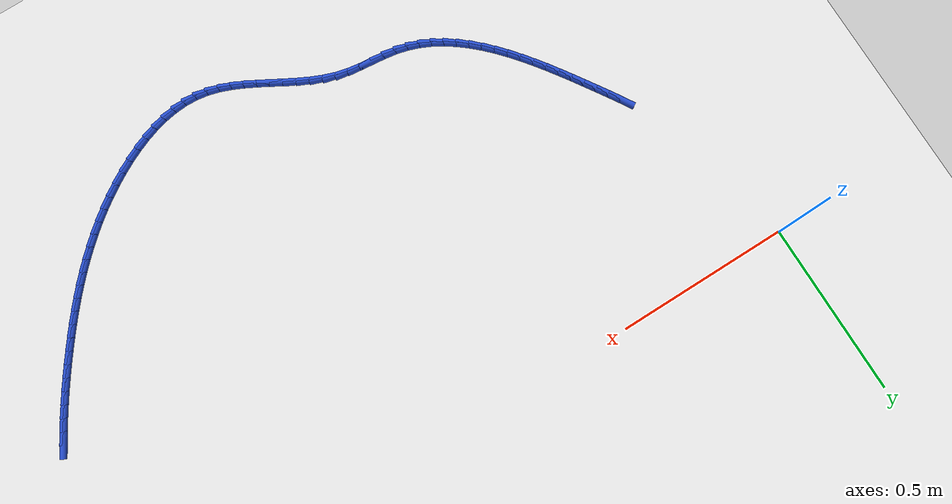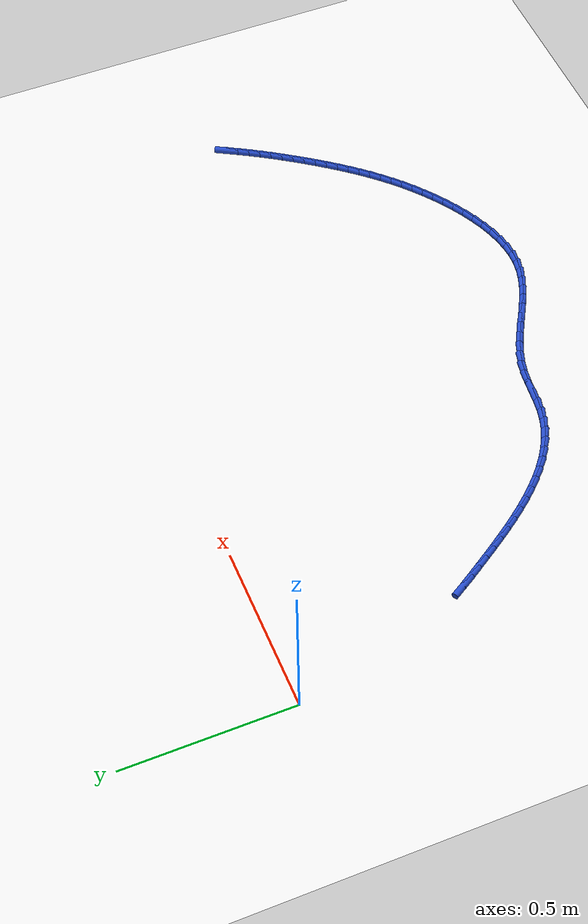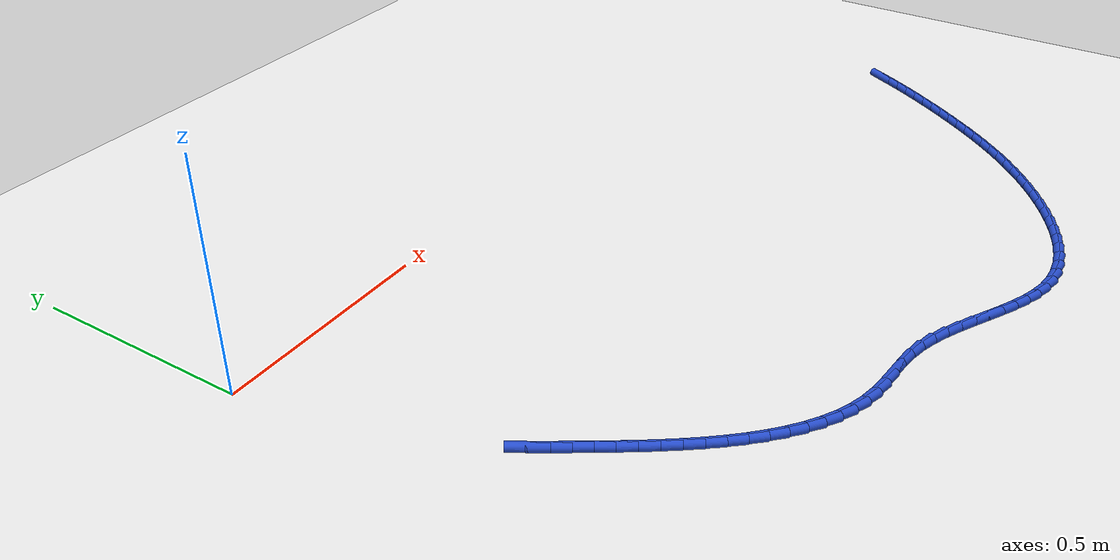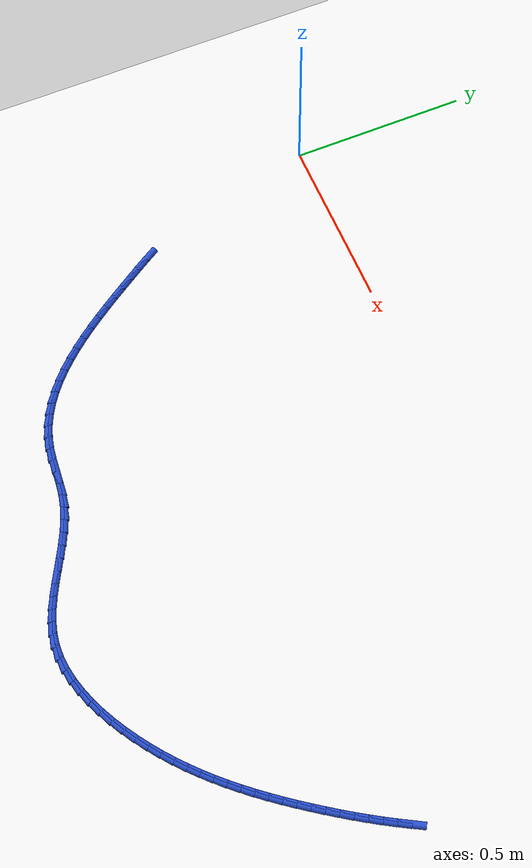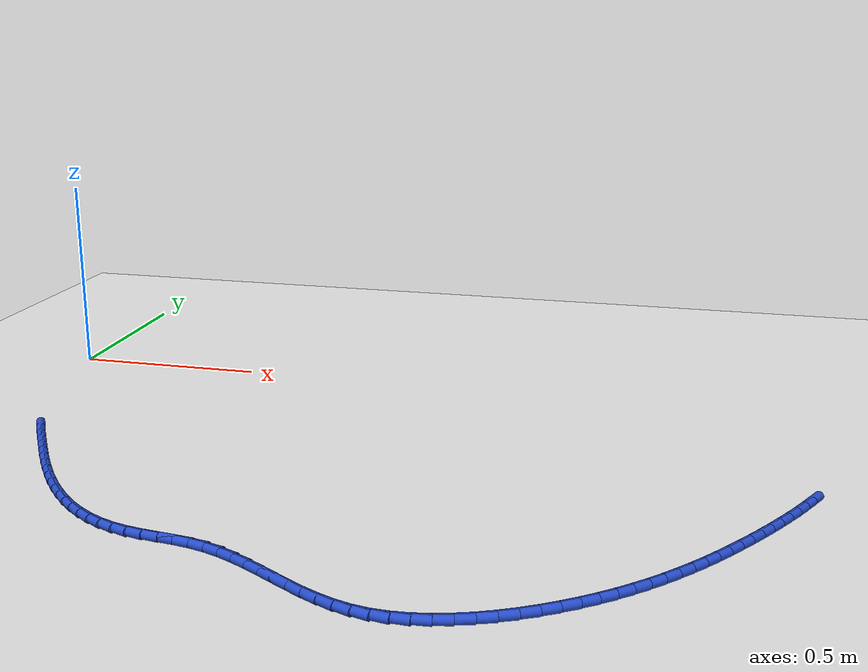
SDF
<sdf version="1.6">
 <world name="default">
  <model name="ground_plane">
   <static>1</static>
   <link name="link">
    <collision name="collision">
     <geometry><plane><normal>0 0 1</normal><size>100 100</size></plane></geometry>
     <surface><friction><ode><mu>100</mu><mu2>50</mu2></ode></friction></surface>
    </collision>
    <visual name="visual">
     <cast_shadows>0</cast_shadows>
     <geometry><plane><normal>0 0 1</normal><size>100 100</size></plane></geometry>
     <material>
      <script><uri>file://media/materials/scripts/gazebo.material</uri><name>Gazebo/WhiteGlow</name></script>
     </material>
    </visual>
   </link>
  </model>
  <model name="line">
   <link name="link_111">
    <pose>1.9296754688427173 -0.5385220783740796 0.01 0 1.57 1.0519265025206743</pose>
    <collision name="collision">
     <geometry><cylinder><radius>0.01</radius><length>0.08</length></cylinder></geometry>
    </collision>
    <visual name="visual">
     <material>
      <script><name>Gazebo/Blue</name><uri>file://media/materials/scripts/gazebo.material</uri></script>
     </material>
     <geometry><cylinder><radius>0.01</radius><length>0.08</length></cylinder></geometry>
    </visual>
   </link>
   <link name="link_112">
    <pose>1.9123089552649983 -0.5689329792263091 0.01 0 1.57 1.0329269362939872</pose>
    <collision name="collision">
     <geometry><cylinder><radius>0.01</radius><length>0.08</length></cylinder></geometry>
    </collision>
    <visual name="visual">
     <material>
      <script><name>Gazebo/Blue</name><uri>file://media/materials/scripts/gazebo.material</uri></script>
     </material>
     <geometry><cylinder><radius>0.01</radius><length>0.08</length></cylinder></geometry>
    </visual>
   </link>
   <link name="link_113">
    <pose>1.8942800849756538 -0.5991555236947708 0.01 0 1.57 1.013427966920176</pose>
    <collision name="collision">
     <geometry><cylinder><radius>0.01</radius><length>0.08</length></cylinder></geometry>
    </collision>
    <visual name="visual">
     <material>
      <script><name>Gazebo/Blue</name><uri>file://media/materials/scripts/gazebo.material</uri></script>
     </material>
     <geometry><cylinder><radius>0.01</radius><length>0.08</length></cylinder></geometry>
    </visual>
   </link>
   <link name="link_114">
    <pose>1.8755271614548825 -0.6292425426321622 0.01 0 1.57 0.9948568612468318</pose>
    <collision name="collision">
     <geometry><cylinder><radius>0.01</radius><length>0.08</length></cylinder></geometry>
    </collision>
    <visual name="visual">
     <material>
      <script><name>Gazebo/Blue</name><uri>file://media/materials/scripts/gazebo.material</uri></script>
     </material>
     <geometry><cylinder><radius>0.01</radius><length>0.08</length></cylinder></geometry>
    </visual>
   </link>
   <link name="link_115">
    <pose>1.856088612708388 -0.6591765402133098 0.01 0 1.57 0.97782227431075</pose>
    <collision name="collision">
     <geometry><cylinder><radius>0.01</radius><length>0.08</length></cylinder></geometry>
    </collision>
    <visual name="visual">
     <material>
      <script><name>Gazebo/Blue</name><uri>file://media/materials/scripts/gazebo.material</uri></script>
     </material>
     <geometry><cylinder><radius>0.01</radius><length>0.08</length></cylinder></geometry>
    </visual>
   </link>
   <link name="link_116">
    <pose>1.8360578950467512 -0.6889013691652413 0.01 0 1.57 0.9621812364572336</pose>
    <collision name="collision">
     <geometry><cylinder><radius>0.01</radius><length>0.08</length></cylinder></geometry>
    </collision>
    <visual name="visual">
     <material>
      <script><name>Gazebo/Blue</name><uri>file://media/materials/scripts/gazebo.material</uri></script>
     </material>
     <geometry><cylinder><radius>0.01</radius><length>0.08</length></cylinder></geometry>
    </visual>
   </link>
   <link name="link_117">
    <pose>1.8155290341678059 -0.7183604822818624 0.01 0 1.57 0.947796597082553</pose>
    <collision name="collision">
     <geometry><cylinder><radius>0.01</radius><length>0.08</length></cylinder></geometry>
    </collision>
    <visual name="visual">
     <material>
      <script><name>Gazebo/Blue</name><uri>file://media/materials/scripts/gazebo.material</uri></script>
     </material>
     <geometry><cylinder><radius>0.01</radius><length>0.08</length></cylinder></geometry>
    </visual>
   </link>
   <link name="link_118">
    <pose>1.7945957257088299 -0.7474973550936432 0.01 0 1.57 0.9334956920907039</pose>
    <collision name="collision">
     <geometry><cylinder><radius>0.01</radius><length>0.08</length></cylinder></geometry>
    </collision>
    <visual name="visual">
     <material>
      <script><name>Gazebo/Blue</name><uri>file://media/materials/scripts/gazebo.material</uri></script>
     </material>
     <geometry><cylinder><radius>0.01</radius><length>0.08</length></cylinder></geometry>
    </visual>
   </link>
   <link name="link_119">
    <pose>1.7733019379216015 -0.7762588886535007 0.01 0 1.57 0.9170424932039646</pose>
    <collision name="collision">
     <geometry><cylinder><radius>0.01</radius><length>0.08</length></cylinder></geometry>
    </collision>
    <visual name="visual">
     <material>
      <script><name>Gazebo/Blue</name><uri>file://media/materials/scripts/gazebo.material</uri></script>
     </material>
     <geometry><cylinder><radius>0.01</radius><length>0.08</length></cylinder></geometry>
    </visual>
   </link>
   <link name="link_120">
    <pose>1.7515892883882076 -0.804599034546223 0.01 0 1.57 0.8981669279160287</pose>
    <collision name="collision">
     <geometry><cylinder><radius>0.01</radius><length>0.08</length></cylinder></geometry>
    </collision>
    <visual name="visual">
     <material>
      <script><name>Gazebo/Blue</name><uri>file://media/materials/scripts/gazebo.material</uri></script>
     </material>
     <geometry><cylinder><radius>0.01</radius><length>0.08</length></cylinder></geometry>
    </visual>
   </link>
   <link name="link_121">
    <pose>1.7293867874141093 -0.8324726128219052 0.01 0 1.57 0.8768821908031729</pose>
    <collision name="collision">
     <geometry><cylinder><radius>0.01</radius><length>0.08</length></cylinder></geometry>
    </collision>
    <visual name="visual">
     <material>
      <script><name>Gazebo/Blue</name><uri>file://media/materials/scripts/gazebo.material</uri></script>
     </material>
     <geometry><cylinder><radius>0.01</radius><length>0.08</length></cylinder></geometry>
    </visual>
   </link>
   <link name="link_122">
    <pose>1.7066234453047688 -0.8598344435306423 0.01 0 1.57 0.8532168078342263</pose>
    <collision name="collision">
     <geometry><cylinder><radius>0.01</radius><length>0.08</length></cylinder></geometry>
    </collision>
    <visual name="visual">
     <material>
      <script><name>Gazebo/Blue</name><uri>file://media/materials/scripts/gazebo.material</uri></script>
     </material>
     <geometry><cylinder><radius>0.01</radius><length>0.08</length></cylinder></geometry>
    </visual>
   </link>
   <link name="link_123">
    <pose>1.6832282723656466 -0.8866393467225296 0.01 0 1.57 0.8272180854871407</pose>
    <collision name="collision">
     <geometry><cylinder><radius>0.01</radius><length>0.08</length></cylinder></geometry>
    </collision>
    <visual name="visual">
     <material>
      <script><name>Gazebo/Blue</name><uri>file://media/materials/scripts/gazebo.material</uri></script>
     </material>
     <geometry><cylinder><radius>0.01</radius><length>0.08</length></cylinder></geometry>
    </visual>
   </link>
   <link name="link_124">
    <pose>1.6591302789022055 -0.9128421424476616 0.01 0 1.57 0.7989555534252532</pose>
    <collision name="collision">
     <geometry><cylinder><radius>0.01</radius><length>0.08</length></cylinder></geometry>
    </collision>
    <visual name="visual">
     <material>
      <script><name>Gazebo/Blue</name><uri>file://media/materials/scripts/gazebo.material</uri></script>
     </material>
     <geometry><cylinder><radius>0.01</radius><length>0.08</length></cylinder></geometry>
    </visual>
   </link>
   <link name="link_125">
    <pose>1.6342584752199072 -0.938397650756133 0.01 0 1.57 0.7685241492015924</pose>
    <collision name="collision">
     <geometry><cylinder><radius>0.01</radius><length>0.08</length></cylinder></geometry>
    </collision>
    <visual name="visual">
     <material>
      <script><name>Gazebo/Blue</name><uri>file://media/materials/scripts/gazebo.material</uri></script>
     </material>
     <geometry><cylinder><radius>0.01</radius><length>0.08</length></cylinder></geometry>
    </visual>
   </link>
   <link name="link_126">
    <pose>1.608541871624212 -0.9632606916980401 0.01 0 1.57 0.7360468403011926</pose>
    <collision name="collision">
     <geometry><cylinder><radius>0.01</radius><length>0.08</length></cylinder></geometry>
    </collision>
    <visual name="visual">
     <material>
      <script><name>Gazebo/Blue</name><uri>file://media/materials/scripts/gazebo.material</uri></script>
     </material>
     <geometry><cylinder><radius>0.01</radius><length>0.08</length></cylinder></geometry>
    </visual>
   </link>
   <link name="link_127">
    <pose>1.5819094784205818 -0.9873860853234767 0.01 0 1.57 0.7016763457427663</pose>
    <collision name="collision">
     <geometry><cylinder><radius>0.01</radius><length>0.08</length></cylinder></geometry>
    </collision>
    <visual name="visual">
     <material>
      <script><name>Gazebo/Blue</name><uri>file://media/materials/scripts/gazebo.material</uri></script>
     </material>
     <geometry><cylinder><radius>0.01</radius><length>0.08</length></cylinder></geometry>
    </visual>
   </link>
   <link name="link_128">
    <pose>1.554290305914479 -1.0107286516825387 0.01 0 1.57 0.6655956207155242</pose>
    <collision name="collision">
     <geometry><cylinder><radius>0.01</radius><length>0.08</length></cylinder></geometry>
    </collision>
    <visual name="visual">
     <material>
      <script><name>Gazebo/Blue</name><uri>file://media/materials/scripts/gazebo.material</uri></script>
     </material>
     <geometry><cylinder><radius>0.01</radius><length>0.08</length></cylinder></geometry>
    </visual>
   </link>
   <link name="link_129">
    <pose>1.5256133644113639 -1.0332432108253198 0.01 0 1.57 0.6280168160291761</pose>
    <collision name="collision">
     <geometry><cylinder><radius>0.01</radius><length>0.08</length></cylinder></geometry>
    </collision>
    <visual name="visual">
     <material>
      <script><name>Gazebo/Blue</name><uri>file://media/materials/scripts/gazebo.material</uri></script>
     </material>
     <geometry><cylinder><radius>0.01</radius><length>0.08</length></cylinder></geometry>
    </visual>
   </link>
   <link name="link_130">
    <pose>1.495807664216699 -1.0548845828019164 0.01 0 1.57 0.5891760330415555</pose>
    <collision name="collision">
     <geometry><cylinder><radius>0.01</radius><length>0.08</length></cylinder></geometry>
    </collision>
    <visual name="visual">
     <material>
      <script><name>Gazebo/Blue</name><uri>file://media/materials/scripts/gazebo.material</uri></script>
     </material>
     <geometry><cylinder><radius>0.01</radius><length>0.08</length></cylinder></geometry>
    </visual>
   </link>
   <link name="link_131">
    <pose>1.4648024766352588 -1.0756073013813752 0.01 0 1.57 0.5485099109714411</pose>
    <collision name="collision">
     <geometry><cylinder><radius>0.01</radius><length>0.08</length></cylinder></geometry>
    </collision>
    <visual name="visual">
     <material>
      <script><name>Gazebo/Blue</name><uri>file://media/materials/scripts/gazebo.material</uri></script>
     </material>
     <geometry><cylinder><radius>0.01</radius><length>0.08</length></cylinder></geometry>
    </visual>
   </link>
   <link name="link_132">
    <pose>1.4326021884649134 -1.0952835087669197 0.01 0 1.57 0.5037477425800794</pose>
    <collision name="collision">
     <geometry><cylinder><radius>0.01</radius><length>0.08</length></cylinder></geometry>
    </collision>
    <visual name="visual">
     <material>
      <script><name>Gazebo/Blue</name><uri>file://media/materials/scripts/gazebo.material</uri></script>
     </material>
     <geometry><cylinder><radius>0.01</radius><length>0.08</length></cylinder></geometry>
    </visual>
   </link>
   <link name="link_133">
    <pose>1.3993897286711032 -1.113589510482211 0.01 0 1.57 0.45362044474532326</pose>
    <collision name="collision">
     <geometry><cylinder><radius>0.01</radius><length>0.08</length></cylinder></geometry>
    </collision>
    <visual name="visual">
     <material>
      <script><name>Gazebo/Blue</name><uri>file://media/materials/scripts/gazebo.material</uri></script>
     </material>
     <geometry><cylinder><radius>0.01</radius><length>0.08</length></cylinder></geometry>
    </visual>
   </link>
   <link name="link_134">
    <pose>1.3653739776538583 -1.1301731468269862 0.01 0 1.57 0.39696081624036833</pose>
    <collision name="collision">
     <geometry><cylinder><radius>0.01</radius><length>0.08</length></cylinder></geometry>
    </collision>
    <visual name="visual">
     <material>
      <script><name>Gazebo/Blue</name><uri>file://media/materials/scripts/gazebo.material</uri></script>
     </material>
     <geometry><cylinder><radius>0.01</radius><length>0.08</length></cylinder></geometry>
    </visual>
   </link>
   <link name="link_135">
    <pose>1.330763815813209 -1.1446822581009828 0.01 0 1.57 0.33244112306460327</pose>
    <collision name="collision">
     <geometry><cylinder><radius>0.01</radius><length>0.08</length></cylinder></geometry>
    </collision>
    <visual name="visual">
     <material>
      <script><name>Gazebo/Blue</name><uri>file://media/materials/scripts/gazebo.material</uri></script>
     </material>
     <geometry><cylinder><radius>0.01</radius><length>0.08</length></cylinder></geometry>
    </visual>
   </link>
   <link name="link_136">
    <pose>1.2957681235491834 -1.1567646846039374 0.01 0 1.57 0.2585917008387142</pose>
    <collision name="collision">
     <geometry><cylinder><radius>0.01</radius><length>0.08</length></cylinder></geometry>
    </collision>
    <visual name="visual">
     <material>
      <script><name>Gazebo/Blue</name><uri>file://media/materials/scripts/gazebo.material</uri></script>
     </material>
     <geometry><cylinder><radius>0.01</radius><length>0.08</length></cylinder></geometry>
    </visual>
   </link>
   <link name="link_137">
    <pose>1.2605957812618116 -1.1660682666355875 0.01 0 1.57 0.1738822780844759</pose>
    <collision name="collision">
     <geometry><cylinder><radius>0.01</radius><length>0.08</length></cylinder></geometry>
    </collision>
    <visual name="visual">
     <material>
      <script><name>Gazebo/Blue</name><uri>file://media/materials/scripts/gazebo.material</uri></script>
     </material>
     <geometry><cylinder><radius>0.01</radius><length>0.08</length></cylinder></geometry>
    </visual>
   </link>
   <link name="link_138">
    <pose>1.2254556693511234 -1.1722408444956705 0.01 0 1.57 0.07691076941709296</pose>
    <collision name="collision">
     <geometry><cylinder><radius>0.01</radius><length>0.08</length></cylinder></geometry>
    </collision>
    <visual name="visual">
     <material>
      <script><name>Gazebo/Blue</name><uri>file://media/materials/scripts/gazebo.material</uri></script>
     </material>
     <geometry><cylinder><radius>0.01</radius><length>0.08</length></cylinder></geometry>
    </visual>
   </link>
   <link name="link_139">
    <pose>1.1905566682171485 -1.174930258483923 0.01 0 1.57 -0.03325167312712115</pose>
    <collision name="collision">
     <geometry><cylinder><radius>0.01</radius><length>0.08</length></cylinder></geometry>
    </collision>
    <visual name="visual">
     <material>
      <script><name>Gazebo/Blue</name><uri>file://media/materials/scripts/gazebo.material</uri></script>
     </material>
     <geometry><cylinder><radius>0.01</radius><length>0.08</length></cylinder></geometry>
    </visual>
   </link>
   <link name="link_140">
    <pose>1.1561076582599152 -1.173784348900083 0.01 0 1.57 -0.15569226850982248</pose>
    <collision name="collision">
     <geometry><cylinder><radius>0.01</radius><length>0.08</length></cylinder></geometry>
    </collision>
    <visual name="visual">
     <material>
      <script><name>Gazebo/Blue</name><uri>file://media/materials/scripts/gazebo.material</uri></script>
     </material>
     <geometry><cylinder><radius>0.01</radius><length>0.08</length></cylinder></geometry>
    </visual>
   </link>
   <link name="link_141">
    <pose>1.1223081015865621 -1.1684790831205125 0.01 0 1.57 -0.27208022016929284</pose>
    <collision name="collision">
     <geometry><cylinder><radius>0.01</radius><length>0.08</length></cylinder></geometry>
    </collision>
    <visual name="visual">
     <material>
      <script><name>Gazebo/Blue</name><uri>file://media/materials/scripts/gazebo.material</uri></script>
     </material>
     <geometry><cylinder><radius>0.01</radius><length>0.08</length></cylinder></geometry>
    </visual>
   </link>
   <link name="link_142">
    <pose>1.0891751078225933 -1.1592350115243628 0.01 0 1.57 -0.36517323914411226</pose>
    <collision name="collision">
     <geometry><cylinder><radius>0.01</radius><length>0.08</length></cylinder></geometry>
    </collision>
    <visual name="visual">
     <material>
      <script><name>Gazebo/Blue</name><uri>file://media/materials/scripts/gazebo.material</uri></script>
     </material>
     <geometry><cylinder><radius>0.01</radius><length>0.08</length></cylinder></geometry>
    </visual>
   </link>
   <link name="link_143">
    <pose>1.056560656298309 -1.1467658346316918 0.01 0 1.57 -0.4344050977661946</pose>
    <collision name="collision">
     <geometry><cylinder><radius>0.01</radius><length>0.08</length></cylinder></geometry>
    </collision>
    <visual name="visual">
     <material>
      <script><name>Gazebo/Blue</name><uri>file://media/materials/scripts/gazebo.material</uri></script>
     </material>
     <geometry><cylinder><radius>0.01</radius><length>0.08</length></cylinder></geometry>
    </visual>
   </link>
   <link name="link_144">
    <pose>1.024310763118865 -1.1318030617196757 0.01 0 1.57 -0.48110053395544616</pose>
    <collision name="collision">
     <geometry><cylinder><radius>0.01</radius><length>0.08</length></cylinder></geometry>
    </collision>
    <visual name="visual">
     <material>
      <script><name>Gazebo/Blue</name><uri>file://media/materials/scripts/gazebo.material</uri></script>
     </material>
     <geometry><cylinder><radius>0.01</radius><length>0.08</length></cylinder></geometry>
    </visual>
   </link>
   <link name="link_145">
    <pose>0.9922714443894188 -1.1150782020654901 0.01 0 1.57 -0.5067939367495693</pose>
    <collision name="collision">
     <geometry><cylinder><radius>0.01</radius><length>0.08</length></cylinder></geometry>
    </collision>
    <visual name="visual">
     <material>
      <script><name>Gazebo/Blue</name><uri>file://media/materials/scripts/gazebo.material</uri></script>
     </material>
     <geometry><cylinder><radius>0.01</radius><length>0.08</length></cylinder></geometry>
    </visual>
   </link>
   <link name="link_146">
    <pose>0.9602887162151251 -1.0973227649463113 0.01 0 1.57 -0.5126128953948126</pose>
    <collision name="collision">
     <geometry><cylinder><radius>0.01</radius><length>0.08</length></cylinder></geometry>
    </collision>
    <visual name="visual">
     <material>
      <script><name>Gazebo/Blue</name><uri>file://media/materials/scripts/gazebo.material</uri></script>
     </material>
     <geometry><cylinder><radius>0.01</radius><length>0.08</length></cylinder></geometry>
    </visual>
   </link>
   <link name="link_147">
    <pose>0.9282085947011409 -1.0792682596393155 0.01 0 1.57 -0.4990296588469301</pose>
    <collision name="collision">
     <geometry><cylinder><radius>0.01</radius><length>0.08</length></cylinder></geometry>
    </collision>
    <visual name="visual">
     <material>
      <script><name>Gazebo/Blue</name><uri>file://media/materials/scripts/gazebo.material</uri></script>
     </material>
     <geometry><cylinder><radius>0.01</radius><length>0.08</length></cylinder></geometry>
    </visual>
   </link>
   <link name="link_148">
    <pose>0.8958770959526225 -1.0616461954216774 0.01 0 1.57 -0.4658368378983186</pose>
    <collision name="collision">
     <geometry><cylinder><radius>0.01</radius><length>0.08</length></cylinder></geometry>
    </collision>
    <visual name="visual">
     <material>
      <script><name>Gazebo/Blue</name><uri>file://media/materials/scripts/gazebo.material</uri></script>
     </material>
     <geometry><cylinder><radius>0.01</radius><length>0.08</length></cylinder></geometry>
    </visual>
   </link>
   <link name="link_149">
    <pose>0.8631402360747261 -1.0451880815705732 0.01 0 1.57 -0.41229862582289895</pose>
    <collision name="collision">
     <geometry><cylinder><radius>0.01</radius><length>0.08</length></cylinder></geometry>
    </collision>
    <visual name="visual">
     <material>
      <script><name>Gazebo/Blue</name><uri>file://media/materials/scripts/gazebo.material</uri></script>
     </material>
     <geometry><cylinder><radius>0.01</radius><length>0.08</length></cylinder></geometry>
    </visual>
   </link>
   <link name="link_150">
    <pose>0.8298440311726081 -1.0306254273631794 0.01 0 1.57 -0.3375219249803566</pose>
    <collision name="collision">
     <geometry><cylinder><radius>0.01</radius><length>0.08</length></cylinder></geometry>
    </collision>
    <visual name="visual">
     <material>
      <script><name>Gazebo/Blue</name><uri>file://media/materials/scripts/gazebo.material</uri></script>
     </material>
     <geometry><cylinder><radius>0.01</radius><length>0.08</length></cylinder></geometry>
    </visual>
   </link>
   <link name="link_151">
    <pose>0.7958344973514245 -1.0186897420766714 0.01 0 1.57 -0.24170009642797935</pose>
    <collision name="collision">
     <geometry><cylinder><radius>0.01</radius><length>0.08</length></cylinder></geometry>
    </collision>
    <visual name="visual">
     <material>
      <script><name>Gazebo/Blue</name><uri>file://media/materials/scripts/gazebo.material</uri></script>
     </material>
     <geometry><cylinder><radius>0.01</radius><length>0.08</length></cylinder></geometry>
    </visual>
   </link>
   <link name="link_152">
    <pose>0.7609631189666667 -1.0100932720803484 0.01 0 1.57 -0.1519572674712842</pose>
    <collision name="collision">
     <geometry><cylinder><radius>0.01</radius><length>0.08</length></cylinder></geometry>
    </collision>
    <visual name="visual">
     <material>
      <script><name>Gazebo/Blue</name><uri>file://media/materials/scripts/gazebo.material</uri></script>
     </material>
     <geometry><cylinder><radius>0.01</radius><length>0.08</length></cylinder></geometry>
    </visual>
   </link>
   <link name="link_153">
    <pose>0.7253397830590766 -1.0046379932151008 0.01 0 1.57 -0.10538656395936323</pose>
    <collision name="collision">
     <geometry><cylinder><radius>0.01</radius><length>0.08</length></cylinder></geometry>
    </collision>
    <visual name="visual">
     <material>
      <script><name>Gazebo/Blue</name><uri>file://media/materials/scripts/gazebo.material</uri></script>
     </material>
     <geometry><cylinder><radius>0.01</radius><length>0.08</length></cylinder></geometry>
    </visual>
   </link>
   <link name="link_154">
    <pose>0.6894392660814281 -1.0008404919011376 0.01 0 1.57 -0.10390471817690056</pose>
    <collision name="collision">
     <geometry><cylinder><radius>0.01</radius><length>0.08</length></cylinder></geometry>
    </collision>
    <visual name="visual">
     <material>
      <script><name>Gazebo/Blue</name><uri>file://media/materials/scripts/gazebo.material</uri></script>
     </material>
     <geometry><cylinder><radius>0.01</radius><length>0.08</length></cylinder></geometry>
    </visual>
   </link>
   <link name="link_155">
    <pose>0.653763908264234 -0.9971202561306698 0.01 0 1.57 -0.14836669530105576</pose>
    <collision name="collision">
     <geometry><cylinder><radius>0.01</radius><length>0.08</length></cylinder></geometry>
    </collision>
    <visual name="visual">
     <material>
      <script><name>Gazebo/Blue</name><uri>file://media/materials/scripts/gazebo.material</uri></script>
     </material>
     <geometry><cylinder><radius>0.01</radius><length>0.08</length></cylinder></geometry>
    </visual>
   </link>
   <link name="link_156">
    <pose>0.6188160498380082 -0.9918967738959095 0.01 0 1.57 -0.2382863894900255</pose>
    <collision name="collision">
     <geometry><cylinder><radius>0.01</radius><length>0.08</length></cylinder></geometry>
    </collision>
    <visual name="visual">
     <material>
      <script><name>Gazebo/Blue</name><uri>file://media/materials/scripts/gazebo.material</uri></script>
     </material>
     <geometry><cylinder><radius>0.01</radius><length>0.08</length></cylinder></geometry>
    </visual>
   </link>
   <link name="link_157">
    <pose>0.5850644510095176 -0.9836984690255997 0.01 0 1.57 -0.3422931183378018</pose>
    <collision name="collision">
     <geometry><cylinder><radius>0.01</radius><length>0.08</length></cylinder></geometry>
    </collision>
    <visual name="visual">
     <material>
      <script><name>Gazebo/Blue</name><uri>file://media/materials/scripts/gazebo.material</uri></script>
     </material>
     <geometry><cylinder><radius>0.01</radius><length>0.08</length></cylinder></geometry>
    </visual>
   </link>
   <link name="link_158">
    <pose>0.5526413400233766 -0.9721454974774992 0.01 0 1.57 -0.43974362561451813</pose>
    <collision name="collision">
     <geometry><cylinder><radius>0.01</radius><length>0.08</length></cylinder></geometry>
    </collision>
    <visual name="visual">
     <material>
      <script><name>Gazebo/Blue</name><uri>file://media/materials/scripts/gazebo.material</uri></script>
     </material>
     <geometry><cylinder><radius>0.01</radius><length>0.08</length></cylinder></geometry>
    </visual>
   </link>
   <link name="link_159">
    <pose>0.5214849273065741 -0.9574874219490679 0.01 0 1.57 -0.5288949889109377</pose>
    <collision name="collision">
     <geometry><cylinder><radius>0.01</radius><length>0.08</length></cylinder></geometry>
    </collision>
    <visual name="visual">
     <material>
      <script><name>Gazebo/Blue</name><uri>file://media/materials/scripts/gazebo.material</uri></script>
     </material>
     <geometry><cylinder><radius>0.01</radius><length>0.08</length></cylinder></geometry>
    </visual>
   </link>
   <link name="link_160">
    <pose>0.4915310852636462 -0.9399813898385236 0.01 0 1.57 -0.6090017943559781</pose>
    <collision name="collision">
     <geometry><cylinder><radius>0.01</radius><length>0.08</length></cylinder></geometry>
    </collision>
    <visual name="visual">
     <material>
      <script><name>Gazebo/Blue</name><uri>file://media/materials/scripts/gazebo.material</uri></script>
     </material>
     <geometry><cylinder><radius>0.01</radius><length>0.08</length></cylinder></geometry>
    </visual>
   </link>
   <link name="link_161">
    <pose>0.46271568629913007 -0.919884548544085 0.01 0 1.57 -0.6799424662259217</pose>
    <collision name="collision">
     <geometry><cylinder><radius>0.01</radius><length>0.08</length></cylinder></geometry>
    </collision>
    <visual name="visual">
     <material>
      <script><name>Gazebo/Blue</name><uri>file://media/materials/scripts/gazebo.material</uri></script>
     </material>
     <geometry><cylinder><radius>0.01</radius><length>0.08</length></cylinder></geometry>
    </visual>
   </link>
   <link name="link_162">
    <pose>0.4349746028175628 -0.8974540454639702 0.01 0 1.57 -0.7420224068739217</pose>
    <collision name="collision">
     <geometry><cylinder><radius>0.01</radius><length>0.08</length></cylinder></geometry>
    </collision>
    <visual name="visual">
     <material>
      <script><name>Gazebo/Blue</name><uri>file://media/materials/scripts/gazebo.material</uri></script>
     </material>
     <geometry><cylinder><radius>0.01</radius><length>0.08</length></cylinder></geometry>
    </visual>
   </link>
   <link name="link_163">
    <pose>0.4082437072234813 -0.8729470279963981 0.01 0 1.57 -0.7957899689092349</pose>
    <collision name="collision">
     <geometry><cylinder><radius>0.01</radius><length>0.08</length></cylinder></geometry>
    </collision>
    <visual name="visual">
     <material>
      <script><name>Gazebo/Blue</name><uri>file://media/materials/scripts/gazebo.material</uri></script>
     </material>
     <geometry><cylinder><radius>0.01</radius><length>0.08</length></cylinder></geometry>
    </visual>
   </link>
   <link name="link_164">
    <pose>0.38245887192142247 -0.8466206435395867 0.01 0 1.57 -0.8418944511070781</pose>
    <collision name="collision">
     <geometry><cylinder><radius>0.01</radius><length>0.08</length></cylinder></geometry>
    </collision>
    <visual name="visual">
     <material>
      <script><name>Gazebo/Blue</name><uri>file://media/materials/scripts/gazebo.material</uri></script>
     </material>
     <geometry><cylinder><radius>0.01</radius><length>0.08</length></cylinder></geometry>
    </visual>
   </link>
   <link name="link_165">
    <pose>0.35755596931592326 -0.8187320394917548 0.01 0 1.57 -0.8809898698927324</pose>
    <collision name="collision">
     <geometry><cylinder><radius>0.01</radius><length>0.08</length></cylinder></geometry>
    </collision>
    <visual name="visual">
     <material>
      <script><name>Gazebo/Blue</name><uri>file://media/materials/scripts/gazebo.material</uri></script>
     </material>
     <geometry><cylinder><radius>0.01</radius><length>0.08</length></cylinder></geometry>
    </visual>
   </link>
   <link name="link_166">
    <pose>0.33347087181152096 -0.7895383632511209 0.01 0 1.57 -0.9136760986124023</pose>
    <collision name="collision">
     <geometry><cylinder><radius>0.01</radius><length>0.08</length></cylinder></geometry>
    </collision>
    <visual name="visual">
     <material>
      <script><name>Gazebo/Blue</name><uri>file://media/materials/scripts/gazebo.material</uri></script>
     </material>
     <geometry><cylinder><radius>0.01</radius><length>0.08</length></cylinder></geometry>
    </visual>
   </link>
   <link name="link_167">
    <pose>0.3101394518127517 -0.7592967622159026 0.01 0 1.57 -0.9404659609336143</pose>
    <collision name="collision">
     <geometry><cylinder><radius>0.01</radius><length>0.08</length></cylinder></geometry>
    </collision>
    <visual name="visual">
     <material>
      <script><name>Gazebo/Blue</name><uri>file://media/materials/scripts/gazebo.material</uri></script>
     </material>
     <geometry><cylinder><radius>0.01</radius><length>0.08</length></cylinder></geometry>
    </visual>
   </link>
   <link name="link_168">
    <pose>0.28749758172415285 -0.7282643837843188 0.01 0 1.57 -0.9617681541815954</pose>
    <collision name="collision">
     <geometry><cylinder><radius>0.01</radius><length>0.08</length></cylinder></geometry>
    </collision>
    <visual name="visual">
     <material>
      <script><name>Gazebo/Blue</name><uri>file://media/materials/scripts/gazebo.material</uri></script>
     </material>
     <geometry><cylinder><radius>0.01</radius><length>0.08</length></cylinder></geometry>
    </visual>
   </link>
   <link name="link_169">
    <pose>0.2654811339502613 -0.6966983753545879 0.01 0 1.57 -0.9778783625107496</pose>
    <collision name="collision">
     <geometry><cylinder><radius>0.01</radius><length>0.08</length></cylinder></geometry>
    </collision>
    <visual name="visual">
     <material>
      <script><name>Gazebo/Blue</name><uri>file://media/materials/scripts/gazebo.material</uri></script>
     </material>
     <geometry><cylinder><radius>0.01</radius><length>0.08</length></cylinder></geometry>
    </visual>
   </link>
   <link name="link_170">
    <pose>0.2440259808956139 -0.6648558843249284 0.01 0 1.57 -0.9889731770007144</pose>
    <collision name="collision">
     <geometry><cylinder><radius>0.01</radius><length>0.08</length></cylinder></geometry>
    </collision>
    <visual name="visual">
     <material>
      <script><name>Gazebo/Blue</name><uri>file://media/materials/scripts/gazebo.material</uri></script>
     </material>
     <geometry><cylinder><radius>0.01</radius><length>0.08</length></cylinder></geometry>
    </visual>
   </link>
   <link name="link_171">
    <pose>0.22306799496474763 -0.6329940580935582 0.01 0 1.57 -0.9952092958704083</pose>
    <collision name="collision">
     <geometry><cylinder><radius>0.01</radius><length>0.08</length></cylinder></geometry>
    </collision>
    <visual name="visual">
     <material>
      <script><name>Gazebo/Blue</name><uri>file://media/materials/scripts/gazebo.material</uri></script>
     </material>
     <geometry><cylinder><radius>0.01</radius><length>0.08</length></cylinder></geometry>
    </visual>
   </link>
   <link name="link_172">
    <pose>0.20254508589334336 -0.6013658234926481 0.01 0 1.57 -1.000510061483913</pose>
    <collision name="collision">
     <geometry><cylinder><radius>0.01</radius><length>0.08</length></cylinder></geometry>
    </collision>
    <visual name="visual">
     <material>
      <script><name>Gazebo/Blue</name><uri>file://media/materials/scripts/gazebo.material</uri></script>
     </material>
     <geometry><cylinder><radius>0.01</radius><length>0.08</length></cylinder></geometry>
    </visual>
   </link>
   <link name="link_173">
    <pose>0.18247094985082973 -0.5700671070305541 0.01 0 1.57 -1.0100156929477626</pose>
    <collision name="collision">
     <geometry><cylinder><radius>0.01</radius><length>0.08</length></cylinder></geometry>
    </collision>
    <visual name="visual">
     <material>
      <script><name>Gazebo/Blue</name><uri>file://media/materials/scripts/gazebo.material</uri></script>
     </material>
     <geometry><cylinder><radius>0.01</radius><length>0.08</length></cylinder></geometry>
    </visual>
   </link>
   <link name="link_174">
    <pose>0.16295580107384672 -0.5389938869259979 0.01 0 1.57 -1.0242054239111056</pose>
    <collision name="collision">
     <geometry><cylinder><radius>0.01</radius><length>0.08</length></cylinder></geometry>
    </collision>
    <visual name="visual">
     <material>
      <script><name>Gazebo/Blue</name><uri>file://media/materials/scripts/gazebo.material</uri></script>
     </material>
     <geometry><cylinder><radius>0.01</radius><length>0.08</length></cylinder></geometry>
    </visual>
   </link>
  </model>
 </world>
</sdf>
